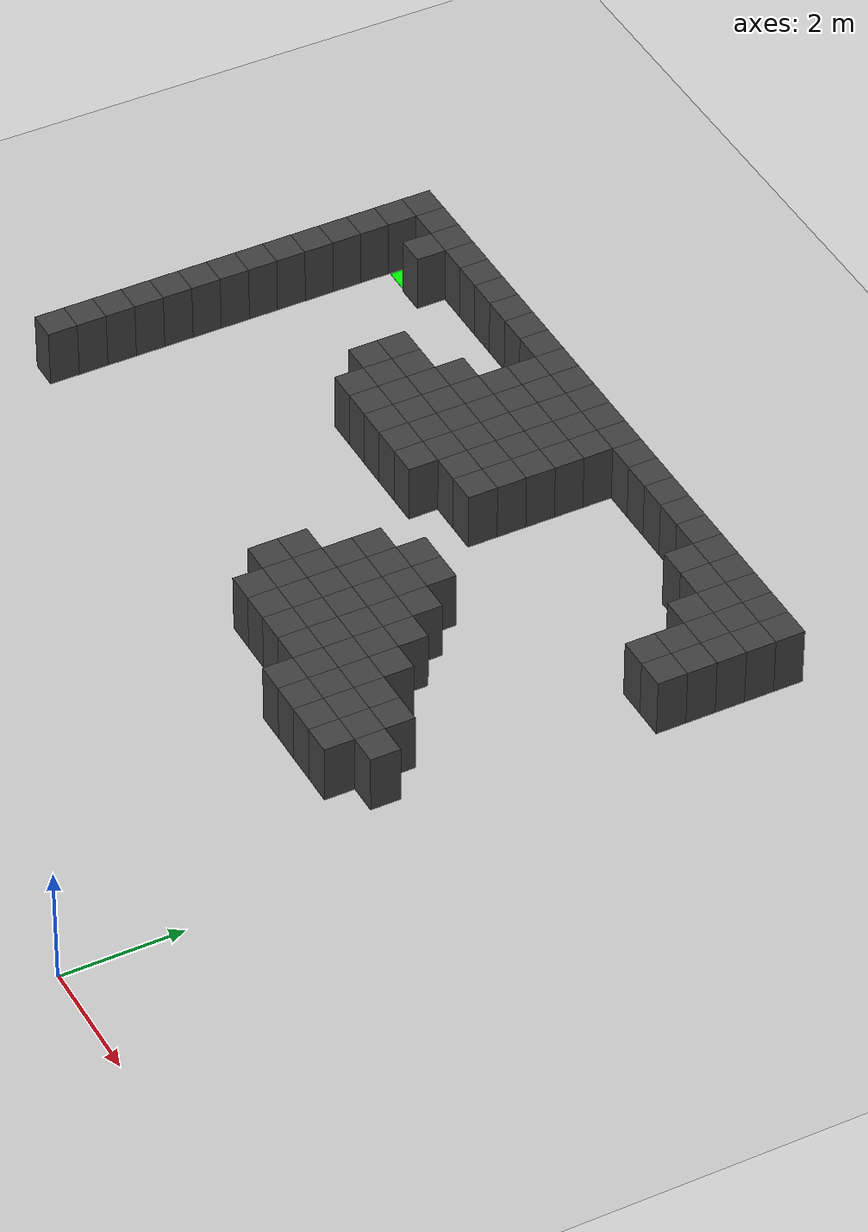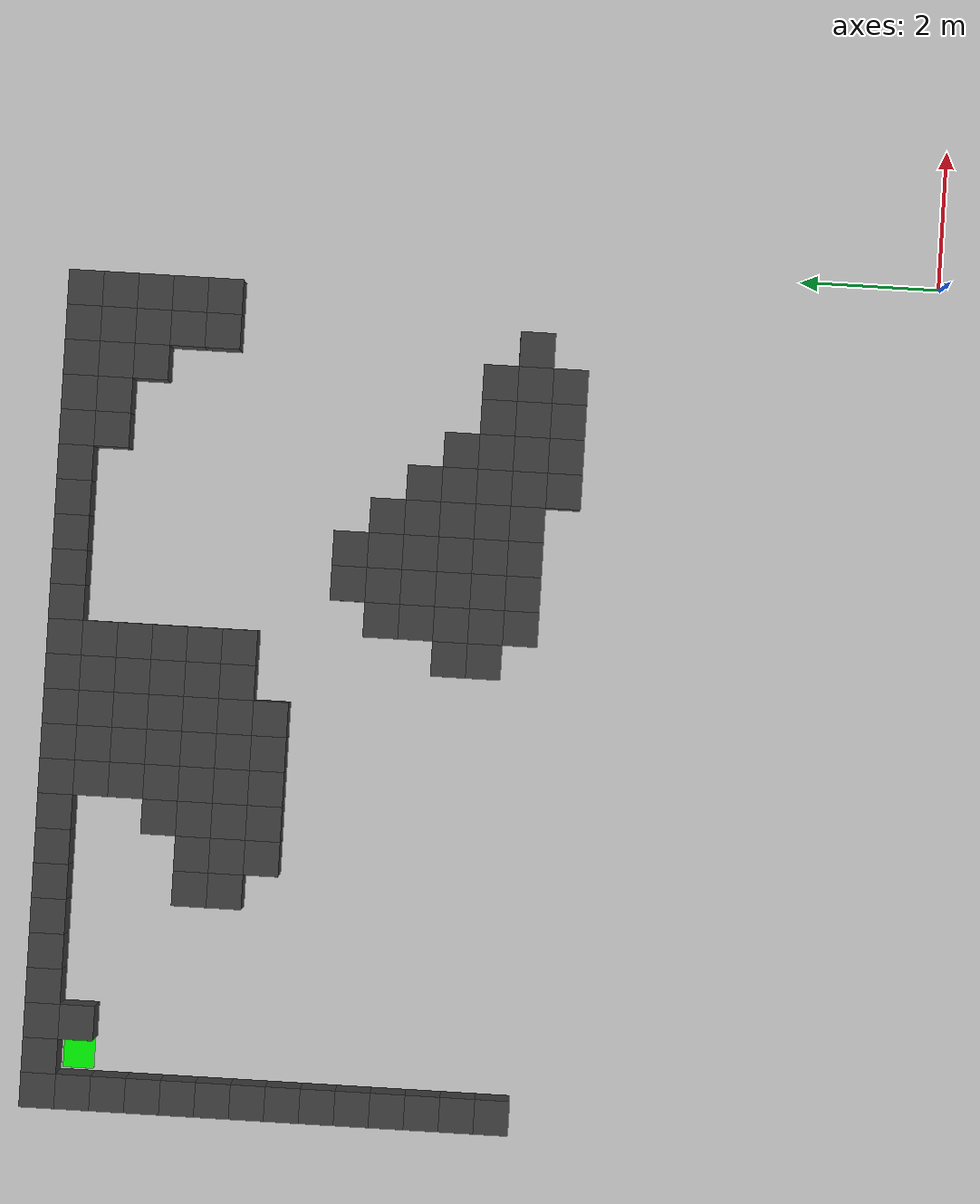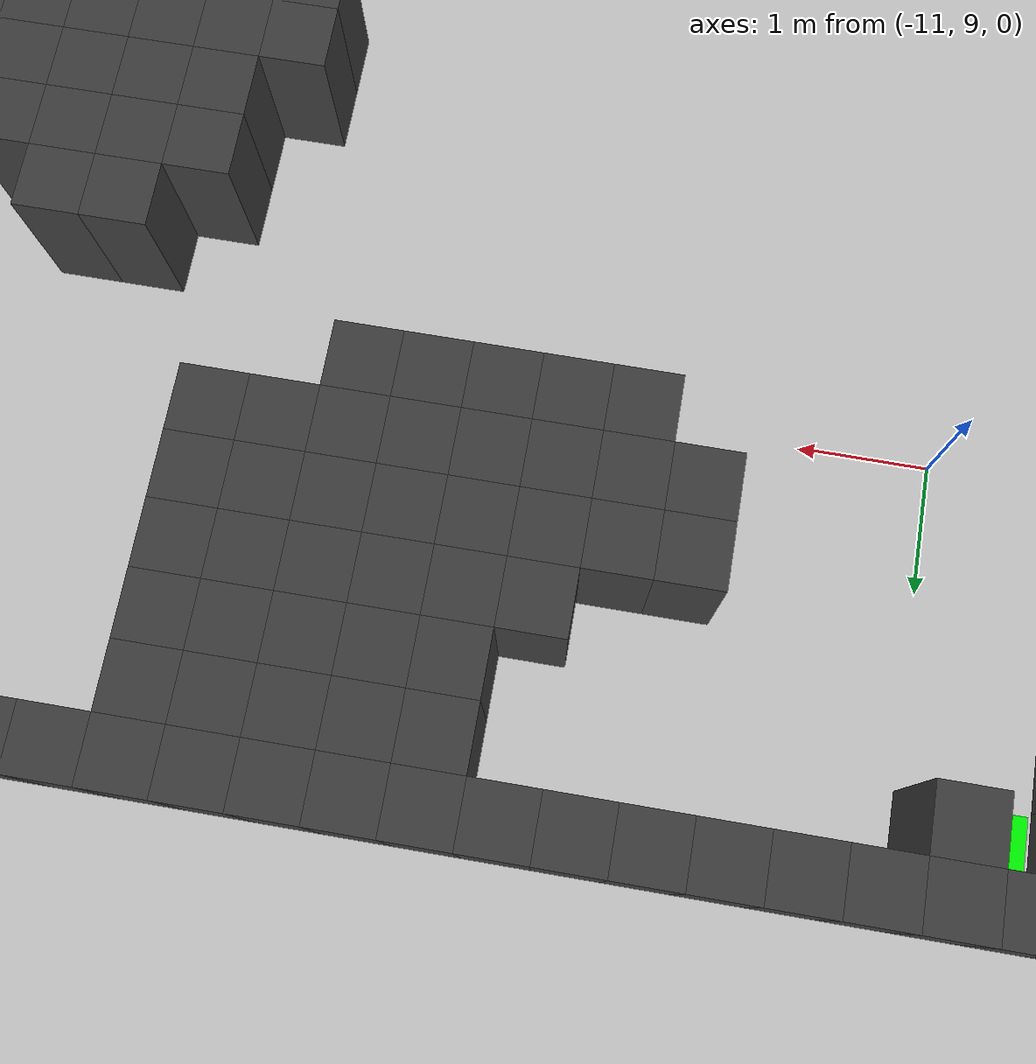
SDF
<sdf version="1.7">
 <world name="map_9713">
  <model name="ground_plane">
   <static>true</static>
   <link name="link">
    <collision name="collision">
     <geometry><plane><normal>0 0 1</normal><size>200 200</size></plane></geometry>
    </collision>
    <visual name="visual">
     <geometry><plane><normal>0 0 1</normal><size>200 200</size></plane></geometry>
     <material><ambient>0.8 0.8 0.8 1</ambient><diffuse>0.8 0.8 0.8 1</diffuse></material>
    </visual>
   </link>
  </model>
  <model name="maze_environment">
   <static>true</static>
   <link name="wall_0">
    <pose>-12.250 12.250 0.500 0 0 0</pose>
    <collision name="col"><geometry><box><size>0.5 0.5 1.0</size></box></geometry></collision>
    <visual name="vis">
     <geometry><box><size>0.5 0.5 1.0</size></box></geometry>
     <material><ambient>0.15 0.15 0.15 1</ambient><diffuse>0.25 0.25 0.25 1</diffuse></material>
    </visual>
   </link>
   <link name="wall_1">
    <pose>-11.750 12.250 0.500 0 0 0</pose>
    <collision name="col"><geometry><box><size>0.5 0.5 1.0</size></box></geometry></collision>
    <visual name="vis">
     <geometry><box><size>0.5 0.5 1.0</size></box></geometry>
     <material><ambient>0.15 0.15 0.15 1</ambient><diffuse>0.25 0.25 0.25 1</diffuse></material>
    </visual>
   </link>
   <link name="wall_2">
    <pose>-11.250 12.250 0.500 0 0 0</pose>
    <collision name="col"><geometry><box><size>0.5 0.5 1.0</size></box></geometry></collision>
    <visual name="vis">
     <geometry><box><size>0.5 0.5 1.0</size></box></geometry>
     <material><ambient>0.15 0.15 0.15 1</ambient><diffuse>0.25 0.25 0.25 1</diffuse></material>
    </visual>
   </link>
   <link name="wall_3">
    <pose>-10.750 12.250 0.500 0 0 0</pose>
    <collision name="col"><geometry><box><size>0.5 0.5 1.0</size></box></geometry></collision>
    <visual name="vis">
     <geometry><box><size>0.5 0.5 1.0</size></box></geometry>
     <material><ambient>0.15 0.15 0.15 1</ambient><diffuse>0.25 0.25 0.25 1</diffuse></material>
    </visual>
   </link>
   <link name="wall_4">
    <pose>-10.250 12.250 0.500 0 0 0</pose>
    <collision name="col"><geometry><box><size>0.5 0.5 1.0</size></box></geometry></collision>
    <visual name="vis">
     <geometry><box><size>0.5 0.5 1.0</size></box></geometry>
     <material><ambient>0.15 0.15 0.15 1</ambient><diffuse>0.25 0.25 0.25 1</diffuse></material>
    </visual>
   </link>
   <link name="wall_5">
    <pose>-9.750 12.250 0.500 0 0 0</pose>
    <collision name="col"><geometry><box><size>0.5 0.5 1.0</size></box></geometry></collision>
    <visual name="vis">
     <geometry><box><size>0.5 0.5 1.0</size></box></geometry>
     <material><ambient>0.15 0.15 0.15 1</ambient><diffuse>0.25 0.25 0.25 1</diffuse></material>
    </visual>
   </link>
   <link name="wall_6">
    <pose>-9.250 12.250 0.500 0 0 0</pose>
    <collision name="col"><geometry><box><size>0.5 0.5 1.0</size></box></geometry></collision>
    <visual name="vis">
     <geometry><box><size>0.5 0.5 1.0</size></box></geometry>
     <material><ambient>0.15 0.15 0.15 1</ambient><diffuse>0.25 0.25 0.25 1</diffuse></material>
    </visual>
   </link>
   <link name="wall_7">
    <pose>-8.750 12.250 0.500 0 0 0</pose>
    <collision name="col"><geometry><box><size>0.5 0.5 1.0</size></box></geometry></collision>
    <visual name="vis">
     <geometry><box><size>0.5 0.5 1.0</size></box></geometry>
     <material><ambient>0.15 0.15 0.15 1</ambient><diffuse>0.25 0.25 0.25 1</diffuse></material>
    </visual>
   </link>
   <link name="wall_8">
    <pose>-8.250 12.250 0.500 0 0 0</pose>
    <collision name="col"><geometry><box><size>0.5 0.5 1.0</size></box></geometry></collision>
    <visual name="vis">
     <geometry><box><size>0.5 0.5 1.0</size></box></geometry>
     <material><ambient>0.15 0.15 0.15 1</ambient><diffuse>0.25 0.25 0.25 1</diffuse></material>
    </visual>
   </link>
   <link name="wall_9">
    <pose>-7.750 12.250 0.500 0 0 0</pose>
    <collision name="col"><geometry><box><size>0.5 0.5 1.0</size></box></geometry></collision>
    <visual name="vis">
     <geometry><box><size>0.5 0.5 1.0</size></box></geometry>
     <material><ambient>0.15 0.15 0.15 1</ambient><diffuse>0.25 0.25 0.25 1</diffuse></material>
    </visual>
   </link>
   <link name="wall_10">
    <pose>-7.250 12.250 0.500 0 0 0</pose>
    <collision name="col"><geometry><box><size>0.5 0.5 1.0</size></box></geometry></collision>
    <visual name="vis">
     <geometry><box><size>0.5 0.5 1.0</size></box></geometry>
     <material><ambient>0.15 0.15 0.15 1</ambient><diffuse>0.25 0.25 0.25 1</diffuse></material>
    </visual>
   </link>
   <link name="wall_11">
    <pose>-6.750 12.250 0.500 0 0 0</pose>
    <collision name="col"><geometry><box><size>0.5 0.5 1.0</size></box></geometry></collision>
    <visual name="vis">
     <geometry><box><size>0.5 0.5 1.0</size></box></geometry>
     <material><ambient>0.15 0.15 0.15 1</ambient><diffuse>0.25 0.25 0.25 1</diffuse></material>
    </visual>
   </link>
   <link name="wall_12">
    <pose>-6.250 12.250 0.500 0 0 0</pose>
    <collision name="col"><geometry><box><size>0.5 0.5 1.0</size></box></geometry></collision>
    <visual name="vis">
     <geometry><box><size>0.5 0.5 1.0</size></box></geometry>
     <material><ambient>0.15 0.15 0.15 1</ambient><diffuse>0.25 0.25 0.25 1</diffuse></material>
    </visual>
   </link>
   <link name="wall_13">
    <pose>-5.750 12.250 0.500 0 0 0</pose>
    <collision name="col"><geometry><box><size>0.5 0.5 1.0</size></box></geometry></collision>
    <visual name="vis">
     <geometry><box><size>0.5 0.5 1.0</size></box></geometry>
     <material><ambient>0.15 0.15 0.15 1</ambient><diffuse>0.25 0.25 0.25 1</diffuse></material>
    </visual>
   </link>
   <link name="wall_14">
    <pose>-5.250 12.250 0.500 0 0 0</pose>
    <collision name="col"><geometry><box><size>0.5 0.5 1.0</size></box></geometry></collision>
    <visual name="vis">
     <geometry><box><size>0.5 0.5 1.0</size></box></geometry>
     <material><ambient>0.15 0.15 0.15 1</ambient><diffuse>0.25 0.25 0.25 1</diffuse></material>
    </visual>
   </link>
   <link name="wall_15">
    <pose>-4.750 12.250 0.500 0 0 0</pose>
    <collision name="col"><geometry><box><size>0.5 0.5 1.0</size></box></geometry></collision>
    <visual name="vis">
     <geometry><box><size>0.5 0.5 1.0</size></box></geometry>
     <material><ambient>0.15 0.15 0.15 1</ambient><diffuse>0.25 0.25 0.25 1</diffuse></material>
    </visual>
   </link>
   <link name="wall_16">
    <pose>-4.250 12.250 0.500 0 0 0</pose>
    <collision name="col"><geometry><box><size>0.5 0.5 1.0</size></box></geometry></collision>
    <visual name="vis">
     <geometry><box><size>0.5 0.5 1.0</size></box></geometry>
     <material><ambient>0.15 0.15 0.15 1</ambient><diffuse>0.25 0.25 0.25 1</diffuse></material>
    </visual>
   </link>
   <link name="wall_17">
    <pose>-3.750 12.250 0.500 0 0 0</pose>
    <collision name="col"><geometry><box><size>0.5 0.5 1.0</size></box></geometry></collision>
    <visual name="vis">
     <geometry><box><size>0.5 0.5 1.0</size></box></geometry>
     <material><ambient>0.15 0.15 0.15 1</ambient><diffuse>0.25 0.25 0.25 1</diffuse></material>
    </visual>
   </link>
   <link name="wall_18">
    <pose>-3.250 12.250 0.500 0 0 0</pose>
    <collision name="col"><geometry><box><size>0.5 0.5 1.0</size></box></geometry></collision>
    <visual name="vis">
     <geometry><box><size>0.5 0.5 1.0</size></box></geometry>
     <material><ambient>0.15 0.15 0.15 1</ambient><diffuse>0.25 0.25 0.25 1</diffuse></material>
    </visual>
   </link>
   <link name="wall_19">
    <pose>-2.750 12.250 0.500 0 0 0</pose>
    <collision name="col"><geometry><box><size>0.5 0.5 1.0</size></box></geometry></collision>
    <visual name="vis">
     <geometry><box><size>0.5 0.5 1.0</size></box></geometry>
     <material><ambient>0.15 0.15 0.15 1</ambient><diffuse>0.25 0.25 0.25 1</diffuse></material>
    </visual>
   </link>
   <link name="wall_20">
    <pose>-2.250 12.250 0.500 0 0 0</pose>
    <collision name="col"><geometry><box><size>0.5 0.5 1.0</size></box></geometry></collision>
    <visual name="vis">
     <geometry><box><size>0.5 0.5 1.0</size></box></geometry>
     <material><ambient>0.15 0.15 0.15 1</ambient><diffuse>0.25 0.25 0.25 1</diffuse></material>
    </visual>
   </link>
   <link name="wall_21">
    <pose>-1.750 12.250 0.500 0 0 0</pose>
    <collision name="col"><geometry><box><size>0.5 0.5 1.0</size></box></geometry></collision>
    <visual name="vis">
     <geometry><box><size>0.5 0.5 1.0</size></box></geometry>
     <material><ambient>0.15 0.15 0.15 1</ambient><diffuse>0.25 0.25 0.25 1</diffuse></material>
    </visual>
   </link>
   <link name="wall_22">
    <pose>-1.250 12.250 0.500 0 0 0</pose>
    <collision name="col"><geometry><box><size>0.5 0.5 1.0</size></box></geometry></collision>
    <visual name="vis">
     <geometry><box><size>0.5 0.5 1.0</size></box></geometry>
     <material><ambient>0.15 0.15 0.15 1</ambient><diffuse>0.25 0.25 0.25 1</diffuse></material>
    </visual>
   </link>
   <link name="wall_23">
    <pose>-0.750 12.250 0.500 0 0 0</pose>
    <collision name="col"><geometry><box><size>0.5 0.5 1.0</size></box></geometry></collision>
    <visual name="vis">
     <geometry><box><size>0.5 0.5 1.0</size></box></geometry>
     <material><ambient>0.15 0.15 0.15 1</ambient><diffuse>0.25 0.25 0.25 1</diffuse></material>
    </visual>
   </link>
   <link name="wall_50">
    <pose>-12.250 11.750 0.500 0 0 0</pose>
    <collision name="col"><geometry><box><size>0.5 0.5 1.0</size></box></geometry></collision>
    <visual name="vis">
     <geometry><box><size>0.5 0.5 1.0</size></box></geometry>
     <material><ambient>0.15 0.15 0.15 1</ambient><diffuse>0.25 0.25 0.25 1</diffuse></material>
    </visual>
   </link>
   <link name="wall_51">
    <pose>-11.250 11.750 0.500 0 0 0</pose>
    <collision name="col"><geometry><box><size>0.5 0.5 1.0</size></box></geometry></collision>
    <visual name="vis">
     <geometry><box><size>0.5 0.5 1.0</size></box></geometry>
     <material><ambient>0.15 0.15 0.15 1</ambient><diffuse>0.25 0.25 0.25 1</diffuse></material>
    </visual>
   </link>
   <link name="wall_52">
    <pose>-7.750 11.750 0.500 0 0 0</pose>
    <collision name="col"><geometry><box><size>0.5 0.5 1.0</size></box></geometry></collision>
    <visual name="vis">
     <geometry><box><size>0.5 0.5 1.0</size></box></geometry>
     <material><ambient>0.15 0.15 0.15 1</ambient><diffuse>0.25 0.25 0.25 1</diffuse></material>
    </visual>
   </link>
   <link name="wall_53">
    <pose>-7.250 11.750 0.500 0 0 0</pose>
    <collision name="col"><geometry><box><size>0.5 0.5 1.0</size></box></geometry></collision>
    <visual name="vis">
     <geometry><box><size>0.5 0.5 1.0</size></box></geometry>
     <material><ambient>0.15 0.15 0.15 1</ambient><diffuse>0.25 0.25 0.25 1</diffuse></material>
    </visual>
   </link>
   <link name="wall_54">
    <pose>-6.750 11.750 0.500 0 0 0</pose>
    <collision name="col"><geometry><box><size>0.5 0.5 1.0</size></box></geometry></collision>
    <visual name="vis">
     <geometry><box><size>0.5 0.5 1.0</size></box></geometry>
     <material><ambient>0.15 0.15 0.15 1</ambient><diffuse>0.25 0.25 0.25 1</diffuse></material>
    </visual>
   </link>
   <link name="wall_55">
    <pose>-6.250 11.750 0.500 0 0 0</pose>
    <collision name="col"><geometry><box><size>0.5 0.5 1.0</size></box></geometry></collision>
    <visual name="vis">
     <geometry><box><size>0.5 0.5 1.0</size></box></geometry>
     <material><ambient>0.15 0.15 0.15 1</ambient><diffuse>0.25 0.25 0.25 1</diffuse></material>
    </visual>
   </link>
   <link name="wall_56">
    <pose>-5.750 11.750 0.500 0 0 0</pose>
    <collision name="col"><geometry><box><size>0.5 0.5 1.0</size></box></geometry></collision>
    <visual name="vis">
     <geometry><box><size>0.5 0.5 1.0</size></box></geometry>
     <material><ambient>0.15 0.15 0.15 1</ambient><diffuse>0.25 0.25 0.25 1</diffuse></material>
    </visual>
   </link>
   <link name="wall_57">
    <pose>-2.750 11.750 0.500 0 0 0</pose>
    <collision name="col"><geometry><box><size>0.5 0.5 1.0</size></box></geometry></collision>
    <visual name="vis">
     <geometry><box><size>0.5 0.5 1.0</size></box></geometry>
     <material><ambient>0.15 0.15 0.15 1</ambient><diffuse>0.25 0.25 0.25 1</diffuse></material>
    </visual>
   </link>
   <link name="wall_58">
    <pose>-2.250 11.750 0.500 0 0 0</pose>
    <collision name="col"><geometry><box><size>0.5 0.5 1.0</size></box></geometry></collision>
    <visual name="vis">
     <geometry><box><size>0.5 0.5 1.0</size></box></geometry>
     <material><ambient>0.15 0.15 0.15 1</ambient><diffuse>0.25 0.25 0.25 1</diffuse></material>
    </visual>
   </link>
   <link name="wall_59">
    <pose>-1.750 11.750 0.500 0 0 0</pose>
    <collision name="col"><geometry><box><size>0.5 0.5 1.0</size></box></geometry></collision>
    <visual name="vis">
     <geometry><box><size>0.5 0.5 1.0</size></box></geometry>
     <material><ambient>0.15 0.15 0.15 1</ambient><diffuse>0.25 0.25 0.25 1</diffuse></material>
    </visual>
   </link>
   <link name="wall_60">
    <pose>-1.250 11.750 0.500 0 0 0</pose>
    <collision name="col"><geometry><box><size>0.5 0.5 1.0</size></box></geometry></collision>
    <visual name="vis">
     <geometry><box><size>0.5 0.5 1.0</size></box></geometry>
     <material><ambient>0.15 0.15 0.15 1</ambient><diffuse>0.25 0.25 0.25 1</diffuse></material>
    </visual>
   </link>
   <link name="wall_61">
    <pose>-0.750 11.750 0.500 0 0 0</pose>
    <collision name="col"><geometry><box><size>0.5 0.5 1.0</size></box></geometry></collision>
    <visual name="vis">
     <geometry><box><size>0.5 0.5 1.0</size></box></geometry>
     <material><ambient>0.15 0.15 0.15 1</ambient><diffuse>0.25 0.25 0.25 1</diffuse></material>
    </visual>
   </link>
   <link name="wall_82">
    <pose>-12.250 11.250 0.500 0 0 0</pose>
    <collision name="col"><geometry><box><size>0.5 0.5 1.0</size></box></geometry></collision>
    <visual name="vis">
     <geometry><box><size>0.5 0.5 1.0</size></box></geometry>
     <material><ambient>0.15 0.15 0.15 1</ambient><diffuse>0.25 0.25 0.25 1</diffuse></material>
    </visual>
   </link>
   <link name="wall_83">
    <pose>-7.750 11.250 0.500 0 0 0</pose>
    <collision name="col"><geometry><box><size>0.5 0.5 1.0</size></box></geometry></collision>
    <visual name="vis">
     <geometry><box><size>0.5 0.5 1.0</size></box></geometry>
     <material><ambient>0.15 0.15 0.15 1</ambient><diffuse>0.25 0.25 0.25 1</diffuse></material>
    </visual>
   </link>
   <link name="wall_84">
    <pose>-7.250 11.250 0.500 0 0 0</pose>
    <collision name="col"><geometry><box><size>0.5 0.5 1.0</size></box></geometry></collision>
    <visual name="vis">
     <geometry><box><size>0.5 0.5 1.0</size></box></geometry>
     <material><ambient>0.15 0.15 0.15 1</ambient><diffuse>0.25 0.25 0.25 1</diffuse></material>
    </visual>
   </link>
   <link name="wall_85">
    <pose>-6.750 11.250 0.500 0 0 0</pose>
    <collision name="col"><geometry><box><size>0.5 0.5 1.0</size></box></geometry></collision>
    <visual name="vis">
     <geometry><box><size>0.5 0.5 1.0</size></box></geometry>
     <material><ambient>0.15 0.15 0.15 1</ambient><diffuse>0.25 0.25 0.25 1</diffuse></material>
    </visual>
   </link>
   <link name="wall_86">
    <pose>-6.250 11.250 0.500 0 0 0</pose>
    <collision name="col"><geometry><box><size>0.5 0.5 1.0</size></box></geometry></collision>
    <visual name="vis">
     <geometry><box><size>0.5 0.5 1.0</size></box></geometry>
     <material><ambient>0.15 0.15 0.15 1</ambient><diffuse>0.25 0.25 0.25 1</diffuse></material>
    </visual>
   </link>
   <link name="wall_87">
    <pose>-5.750 11.250 0.500 0 0 0</pose>
    <collision name="col"><geometry><box><size>0.5 0.5 1.0</size></box></geometry></collision>
    <visual name="vis">
     <geometry><box><size>0.5 0.5 1.0</size></box></geometry>
     <material><ambient>0.15 0.15 0.15 1</ambient><diffuse>0.25 0.25 0.25 1</diffuse></material>
    </visual>
   </link>
   <link name="wall_88">
    <pose>-1.750 11.250 0.500 0 0 0</pose>
    <collision name="col"><geometry><box><size>0.5 0.5 1.0</size></box></geometry></collision>
    <visual name="vis">
     <geometry><box><size>0.5 0.5 1.0</size></box></geometry>
     <material><ambient>0.15 0.15 0.15 1</ambient><diffuse>0.25 0.25 0.25 1</diffuse></material>
    </visual>
   </link>
   <link name="wall_89">
    <pose>-1.250 11.250 0.500 0 0 0</pose>
    <collision name="col"><geometry><box><size>0.5 0.5 1.0</size></box></geometry></collision>
    <visual name="vis">
     <geometry><box><size>0.5 0.5 1.0</size></box></geometry>
     <material><ambient>0.15 0.15 0.15 1</ambient><diffuse>0.25 0.25 0.25 1</diffuse></material>
    </visual>
   </link>
   <link name="wall_90">
    <pose>-0.750 11.250 0.500 0 0 0</pose>
    <collision name="col"><geometry><box><size>0.5 0.5 1.0</size></box></geometry></collision>
    <visual name="vis">
     <geometry><box><size>0.5 0.5 1.0</size></box></geometry>
     <material><ambient>0.15 0.15 0.15 1</ambient><diffuse>0.25 0.25 0.25 1</diffuse></material>
    </visual>
   </link>
   <link name="wall_105">
    <pose>-12.250 10.750 0.500 0 0 0</pose>
    <collision name="col"><geometry><box><size>0.5 0.5 1.0</size></box></geometry></collision>
    <visual name="vis">
     <geometry><box><size>0.5 0.5 1.0</size></box></geometry>
     <material><ambient>0.15 0.15 0.15 1</ambient><diffuse>0.25 0.25 0.25 1</diffuse></material>
    </visual>
   </link>
   <link name="wall_106">
    <pose>-8.250 10.750 0.500 0 0 0</pose>
    <collision name="col"><geometry><box><size>0.5 0.5 1.0</size></box></geometry></collision>
    <visual name="vis">
     <geometry><box><size>0.5 0.5 1.0</size></box></geometry>
     <material><ambient>0.15 0.15 0.15 1</ambient><diffuse>0.25 0.25 0.25 1</diffuse></material>
    </visual>
   </link>
   <link name="wall_107">
    <pose>-7.750 10.750 0.500 0 0 0</pose>
    <collision name="col"><geometry><box><size>0.5 0.5 1.0</size></box></geometry></collision>
    <visual name="vis">
     <geometry><box><size>0.5 0.5 1.0</size></box></geometry>
     <material><ambient>0.15 0.15 0.15 1</ambient><diffuse>0.25 0.25 0.25 1</diffuse></material>
    </visual>
   </link>
   <link name="wall_108">
    <pose>-7.250 10.750 0.500 0 0 0</pose>
    <collision name="col"><geometry><box><size>0.5 0.5 1.0</size></box></geometry></collision>
    <visual name="vis">
     <geometry><box><size>0.5 0.5 1.0</size></box></geometry>
     <material><ambient>0.15 0.15 0.15 1</ambient><diffuse>0.25 0.25 0.25 1</diffuse></material>
    </visual>
   </link>
   <link name="wall_109">
    <pose>-6.750 10.750 0.500 0 0 0</pose>
    <collision name="col"><geometry><box><size>0.5 0.5 1.0</size></box></geometry></collision>
    <visual name="vis">
     <geometry><box><size>0.5 0.5 1.0</size></box></geometry>
     <material><ambient>0.15 0.15 0.15 1</ambient><diffuse>0.25 0.25 0.25 1</diffuse></material>
    </visual>
   </link>
   <link name="wall_110">
    <pose>-6.250 10.750 0.500 0 0 0</pose>
    <collision name="col"><geometry><box><size>0.5 0.5 1.0</size></box></geometry></collision>
    <visual name="vis">
     <geometry><box><size>0.5 0.5 1.0</size></box></geometry>
     <material><ambient>0.15 0.15 0.15 1</ambient><diffuse>0.25 0.25 0.25 1</diffuse></material>
    </visual>
   </link>
   <link name="wall_111">
    <pose>-5.750 10.750 0.500 0 0 0</pose>
    <collision name="col"><geometry><box><size>0.5 0.5 1.0</size></box></geometry></collision>
    <visual name="vis">
     <geometry><box><size>0.5 0.5 1.0</size></box></geometry>
     <material><ambient>0.15 0.15 0.15 1</ambient><diffuse>0.25 0.25 0.25 1</diffuse></material>
    </visual>
   </link>
   <link name="wall_112">
    <pose>-1.250 10.750 0.500 0 0 0</pose>
    <collision name="col"><geometry><box><size>0.5 0.5 1.0</size></box></geometry></collision>
    <visual name="vis">
     <geometry><box><size>0.5 0.5 1.0</size></box></geometry>
     <material><ambient>0.15 0.15 0.15 1</ambient><diffuse>0.25 0.25 0.25 1</diffuse></material>
    </visual>
   </link>
   <link name="wall_113">
    <pose>-0.750 10.750 0.500 0 0 0</pose>
    <collision name="col"><geometry><box><size>0.5 0.5 1.0</size></box></geometry></collision>
    <visual name="vis">
     <geometry><box><size>0.5 0.5 1.0</size></box></geometry>
     <material><ambient>0.15 0.15 0.15 1</ambient><diffuse>0.25 0.25 0.25 1</diffuse></material>
    </visual>
   </link>
   <link name="wall_122">
    <pose>-12.250 10.250 0.500 0 0 0</pose>
    <collision name="col"><geometry><box><size>0.5 0.5 1.0</size></box></geometry></collision>
    <visual name="vis">
     <geometry><box><size>0.5 0.5 1.0</size></box></geometry>
     <material><ambient>0.15 0.15 0.15 1</ambient><diffuse>0.25 0.25 0.25 1</diffuse></material>
    </visual>
   </link>
   <link name="wall_123">
    <pose>-9.250 10.250 0.500 0 0 0</pose>
    <collision name="col"><geometry><box><size>0.5 0.5 1.0</size></box></geometry></collision>
    <visual name="vis">
     <geometry><box><size>0.5 0.5 1.0</size></box></geometry>
     <material><ambient>0.15 0.15 0.15 1</ambient><diffuse>0.25 0.25 0.25 1</diffuse></material>
    </visual>
   </link>
   <link name="wall_124">
    <pose>-8.750 10.250 0.500 0 0 0</pose>
    <collision name="col"><geometry><box><size>0.5 0.5 1.0</size></box></geometry></collision>
    <visual name="vis">
     <geometry><box><size>0.5 0.5 1.0</size></box></geometry>
     <material><ambient>0.15 0.15 0.15 1</ambient><diffuse>0.25 0.25 0.25 1</diffuse></material>
    </visual>
   </link>
   <link name="wall_125">
    <pose>-8.250 10.250 0.500 0 0 0</pose>
    <collision name="col"><geometry><box><size>0.5 0.5 1.0</size></box></geometry></collision>
    <visual name="vis">
     <geometry><box><size>0.5 0.5 1.0</size></box></geometry>
     <material><ambient>0.15 0.15 0.15 1</ambient><diffuse>0.25 0.25 0.25 1</diffuse></material>
    </visual>
   </link>
   <link name="wall_126">
    <pose>-7.750 10.250 0.500 0 0 0</pose>
    <collision name="col"><geometry><box><size>0.5 0.5 1.0</size></box></geometry></collision>
    <visual name="vis">
     <geometry><box><size>0.5 0.5 1.0</size></box></geometry>
     <material><ambient>0.15 0.15 0.15 1</ambient><diffuse>0.25 0.25 0.25 1</diffuse></material>
    </visual>
   </link>
   <link name="wall_127">
    <pose>-7.250 10.250 0.500 0 0 0</pose>
    <collision name="col"><geometry><box><size>0.5 0.5 1.0</size></box></geometry></collision>
    <visual name="vis">
     <geometry><box><size>0.5 0.5 1.0</size></box></geometry>
     <material><ambient>0.15 0.15 0.15 1</ambient><diffuse>0.25 0.25 0.25 1</diffuse></material>
    </visual>
   </link>
   <link name="wall_128">
    <pose>-6.750 10.250 0.500 0 0 0</pose>
    <collision name="col"><geometry><box><size>0.5 0.5 1.0</size></box></geometry></collision>
    <visual name="vis">
     <geometry><box><size>0.5 0.5 1.0</size></box></geometry>
     <material><ambient>0.15 0.15 0.15 1</ambient><diffuse>0.25 0.25 0.25 1</diffuse></material>
    </visual>
   </link>
   <link name="wall_129">
    <pose>-6.250 10.250 0.500 0 0 0</pose>
    <collision name="col"><geometry><box><size>0.5 0.5 1.0</size></box></geometry></collision>
    <visual name="vis">
     <geometry><box><size>0.5 0.5 1.0</size></box></geometry>
     <material><ambient>0.15 0.15 0.15 1</ambient><diffuse>0.25 0.25 0.25 1</diffuse></material>
    </visual>
   </link>
   <link name="wall_130">
    <pose>-5.750 10.250 0.500 0 0 0</pose>
    <collision name="col"><geometry><box><size>0.5 0.5 1.0</size></box></geometry></collision>
    <visual name="vis">
     <geometry><box><size>0.5 0.5 1.0</size></box></geometry>
     <material><ambient>0.15 0.15 0.15 1</ambient><diffuse>0.25 0.25 0.25 1</diffuse></material>
    </visual>
   </link>
   <link name="wall_131">
    <pose>-1.250 10.250 0.500 0 0 0</pose>
    <collision name="col"><geometry><box><size>0.5 0.5 1.0</size></box></geometry></collision>
    <visual name="vis">
     <geometry><box><size>0.5 0.5 1.0</size></box></geometry>
     <material><ambient>0.15 0.15 0.15 1</ambient><diffuse>0.25 0.25 0.25 1</diffuse></material>
    </visual>
   </link>
   <link name="wall_132">
    <pose>-0.750 10.250 0.500 0 0 0</pose>
    <collision name="col"><geometry><box><size>0.5 0.5 1.0</size></box></geometry></collision>
    <visual name="vis">
     <geometry><box><size>0.5 0.5 1.0</size></box></geometry>
     <material><ambient>0.15 0.15 0.15 1</ambient><diffuse>0.25 0.25 0.25 1</diffuse></material>
    </visual>
   </link>
   <link name="wall_139">
    <pose>-12.250 9.750 0.500 0 0 0</pose>
    <collision name="col"><geometry><box><size>0.5 0.5 1.0</size></box></geometry></collision>
    <visual name="vis">
     <geometry><box><size>0.5 0.5 1.0</size></box></geometry>
     <material><ambient>0.15 0.15 0.15 1</ambient><diffuse>0.25 0.25 0.25 1</diffuse></material>
    </visual>
   </link>
   <link name="wall_140">
    <pose>-9.250 9.750 0.500 0 0 0</pose>
    <collision name="col"><geometry><box><size>0.5 0.5 1.0</size></box></geometry></collision>
    <visual name="vis">
     <geometry><box><size>0.5 0.5 1.0</size></box></geometry>
     <material><ambient>0.15 0.15 0.15 1</ambient><diffuse>0.25 0.25 0.25 1</diffuse></material>
    </visual>
   </link>
   <link name="wall_141">
    <pose>-8.750 9.750 0.500 0 0 0</pose>
    <collision name="col"><geometry><box><size>0.5 0.5 1.0</size></box></geometry></collision>
    <visual name="vis">
     <geometry><box><size>0.5 0.5 1.0</size></box></geometry>
     <material><ambient>0.15 0.15 0.15 1</ambient><diffuse>0.25 0.25 0.25 1</diffuse></material>
    </visual>
   </link>
   <link name="wall_142">
    <pose>-8.250 9.750 0.500 0 0 0</pose>
    <collision name="col"><geometry><box><size>0.5 0.5 1.0</size></box></geometry></collision>
    <visual name="vis">
     <geometry><box><size>0.5 0.5 1.0</size></box></geometry>
     <material><ambient>0.15 0.15 0.15 1</ambient><diffuse>0.25 0.25 0.25 1</diffuse></material>
    </visual>
   </link>
   <link name="wall_143">
    <pose>-7.750 9.750 0.500 0 0 0</pose>
    <collision name="col"><geometry><box><size>0.5 0.5 1.0</size></box></geometry></collision>
    <visual name="vis">
     <geometry><box><size>0.5 0.5 1.0</size></box></geometry>
     <material><ambient>0.15 0.15 0.15 1</ambient><diffuse>0.25 0.25 0.25 1</diffuse></material>
    </visual>
   </link>
   <link name="wall_144">
    <pose>-7.250 9.750 0.500 0 0 0</pose>
    <collision name="col"><geometry><box><size>0.5 0.5 1.0</size></box></geometry></collision>
    <visual name="vis">
     <geometry><box><size>0.5 0.5 1.0</size></box></geometry>
     <material><ambient>0.15 0.15 0.15 1</ambient><diffuse>0.25 0.25 0.25 1</diffuse></material>
    </visual>
   </link>
   <link name="wall_145">
    <pose>-6.750 9.750 0.500 0 0 0</pose>
    <collision name="col"><geometry><box><size>0.5 0.5 1.0</size></box></geometry></collision>
    <visual name="vis">
     <geometry><box><size>0.5 0.5 1.0</size></box></geometry>
     <material><ambient>0.15 0.15 0.15 1</ambient><diffuse>0.25 0.25 0.25 1</diffuse></material>
    </visual>
   </link>
   <link name="wall_146">
    <pose>-6.250 9.750 0.500 0 0 0</pose>
    <collision name="col"><geometry><box><size>0.5 0.5 1.0</size></box></geometry></collision>
    <visual name="vis">
     <geometry><box><size>0.5 0.5 1.0</size></box></geometry>
     <material><ambient>0.15 0.15 0.15 1</ambient><diffuse>0.25 0.25 0.25 1</diffuse></material>
    </visual>
   </link>
   <link name="wall_147">
    <pose>-5.750 9.750 0.500 0 0 0</pose>
    <collision name="col"><geometry><box><size>0.5 0.5 1.0</size></box></geometry></collision>
    <visual name="vis">
     <geometry><box><size>0.5 0.5 1.0</size></box></geometry>
     <material><ambient>0.15 0.15 0.15 1</ambient><diffuse>0.25 0.25 0.25 1</diffuse></material>
    </visual>
   </link>
   <link name="wall_153">
    <pose>-12.250 9.250 0.500 0 0 0</pose>
    <collision name="col"><geometry><box><size>0.5 0.5 1.0</size></box></geometry></collision>
    <visual name="vis">
     <geometry><box><size>0.5 0.5 1.0</size></box></geometry>
     <material><ambient>0.15 0.15 0.15 1</ambient><diffuse>0.25 0.25 0.25 1</diffuse></material>
    </visual>
   </link>
   <link name="wall_154">
    <pose>-8.750 9.250 0.500 0 0 0</pose>
    <collision name="col"><geometry><box><size>0.5 0.5 1.0</size></box></geometry></collision>
    <visual name="vis">
     <geometry><box><size>0.5 0.5 1.0</size></box></geometry>
     <material><ambient>0.15 0.15 0.15 1</ambient><diffuse>0.25 0.25 0.25 1</diffuse></material>
    </visual>
   </link>
   <link name="wall_155">
    <pose>-8.250 9.250 0.500 0 0 0</pose>
    <collision name="col"><geometry><box><size>0.5 0.5 1.0</size></box></geometry></collision>
    <visual name="vis">
     <geometry><box><size>0.5 0.5 1.0</size></box></geometry>
     <material><ambient>0.15 0.15 0.15 1</ambient><diffuse>0.25 0.25 0.25 1</diffuse></material>
    </visual>
   </link>
   <link name="wall_156">
    <pose>-7.750 9.250 0.500 0 0 0</pose>
    <collision name="col"><geometry><box><size>0.5 0.5 1.0</size></box></geometry></collision>
    <visual name="vis">
     <geometry><box><size>0.5 0.5 1.0</size></box></geometry>
     <material><ambient>0.15 0.15 0.15 1</ambient><diffuse>0.25 0.25 0.25 1</diffuse></material>
    </visual>
   </link>
   <link name="wall_157">
    <pose>-7.250 9.250 0.500 0 0 0</pose>
    <collision name="col"><geometry><box><size>0.5 0.5 1.0</size></box></geometry></collision>
    <visual name="vis">
     <geometry><box><size>0.5 0.5 1.0</size></box></geometry>
     <material><ambient>0.15 0.15 0.15 1</ambient><diffuse>0.25 0.25 0.25 1</diffuse></material>
    </visual>
   </link>
   <link name="wall_158">
    <pose>-6.750 9.250 0.500 0 0 0</pose>
    <collision name="col"><geometry><box><size>0.5 0.5 1.0</size></box></geometry></collision>
    <visual name="vis">
     <geometry><box><size>0.5 0.5 1.0</size></box></geometry>
     <material><ambient>0.15 0.15 0.15 1</ambient><diffuse>0.25 0.25 0.25 1</diffuse></material>
    </visual>
   </link>
   <link name="wall_163">
    <pose>-12.250 8.750 0.500 0 0 0</pose>
    <collision name="col"><geometry><box><size>0.5 0.5 1.0</size></box></geometry></collision>
    <visual name="vis">
     <geometry><box><size>0.5 0.5 1.0</size></box></geometry>
     <material><ambient>0.15 0.15 0.15 1</ambient><diffuse>0.25 0.25 0.25 1</diffuse></material>
    </visual>
   </link>
   <link name="wall_169">
    <pose>-12.250 8.250 0.500 0 0 0</pose>
    <collision name="col"><geometry><box><size>0.5 0.5 1.0</size></box></geometry></collision>
    <visual name="vis">
     <geometry><box><size>0.5 0.5 1.0</size></box></geometry>
     <material><ambient>0.15 0.15 0.15 1</ambient><diffuse>0.25 0.25 0.25 1</diffuse></material>
    </visual>
   </link>
   <link name="wall_170">
    <pose>-4.750 8.250 0.500 0 0 0</pose>
    <collision name="col"><geometry><box><size>0.5 0.5 1.0</size></box></geometry></collision>
    <visual name="vis">
     <geometry><box><size>0.5 0.5 1.0</size></box></geometry>
     <material><ambient>0.15 0.15 0.15 1</ambient><diffuse>0.25 0.25 0.25 1</diffuse></material>
    </visual>
   </link>
   <link name="wall_171">
    <pose>-4.250 8.250 0.500 0 0 0</pose>
    <collision name="col"><geometry><box><size>0.5 0.5 1.0</size></box></geometry></collision>
    <visual name="vis">
     <geometry><box><size>0.5 0.5 1.0</size></box></geometry>
     <material><ambient>0.15 0.15 0.15 1</ambient><diffuse>0.25 0.25 0.25 1</diffuse></material>
    </visual>
   </link>
   <link name="wall_178">
    <pose>-12.250 7.750 0.500 0 0 0</pose>
    <collision name="col"><geometry><box><size>0.5 0.5 1.0</size></box></geometry></collision>
    <visual name="vis">
     <geometry><box><size>0.5 0.5 1.0</size></box></geometry>
     <material><ambient>0.15 0.15 0.15 1</ambient><diffuse>0.25 0.25 0.25 1</diffuse></material>
    </visual>
   </link>
   <link name="wall_179">
    <pose>-5.250 7.750 0.500 0 0 0</pose>
    <collision name="col"><geometry><box><size>0.5 0.5 1.0</size></box></geometry></collision>
    <visual name="vis">
     <geometry><box><size>0.5 0.5 1.0</size></box></geometry>
     <material><ambient>0.15 0.15 0.15 1</ambient><diffuse>0.25 0.25 0.25 1</diffuse></material>
    </visual>
   </link>
   <link name="wall_180">
    <pose>-4.750 7.750 0.500 0 0 0</pose>
    <collision name="col"><geometry><box><size>0.5 0.5 1.0</size></box></geometry></collision>
    <visual name="vis">
     <geometry><box><size>0.5 0.5 1.0</size></box></geometry>
     <material><ambient>0.15 0.15 0.15 1</ambient><diffuse>0.25 0.25 0.25 1</diffuse></material>
    </visual>
   </link>
   <link name="wall_181">
    <pose>-4.250 7.750 0.500 0 0 0</pose>
    <collision name="col"><geometry><box><size>0.5 0.5 1.0</size></box></geometry></collision>
    <visual name="vis">
     <geometry><box><size>0.5 0.5 1.0</size></box></geometry>
     <material><ambient>0.15 0.15 0.15 1</ambient><diffuse>0.25 0.25 0.25 1</diffuse></material>
    </visual>
   </link>
   <link name="wall_182">
    <pose>-3.750 7.750 0.500 0 0 0</pose>
    <collision name="col"><geometry><box><size>0.5 0.5 1.0</size></box></geometry></collision>
    <visual name="vis">
     <geometry><box><size>0.5 0.5 1.0</size></box></geometry>
     <material><ambient>0.15 0.15 0.15 1</ambient><diffuse>0.25 0.25 0.25 1</diffuse></material>
    </visual>
   </link>
   <link name="wall_191">
    <pose>-12.250 7.250 0.500 0 0 0</pose>
    <collision name="col"><geometry><box><size>0.5 0.5 1.0</size></box></geometry></collision>
    <visual name="vis">
     <geometry><box><size>0.5 0.5 1.0</size></box></geometry>
     <material><ambient>0.15 0.15 0.15 1</ambient><diffuse>0.25 0.25 0.25 1</diffuse></material>
    </visual>
   </link>
   <link name="wall_192">
    <pose>-5.250 7.250 0.500 0 0 0</pose>
    <collision name="col"><geometry><box><size>0.5 0.5 1.0</size></box></geometry></collision>
    <visual name="vis">
     <geometry><box><size>0.5 0.5 1.0</size></box></geometry>
     <material><ambient>0.15 0.15 0.15 1</ambient><diffuse>0.25 0.25 0.25 1</diffuse></material>
    </visual>
   </link>
   <link name="wall_193">
    <pose>-4.750 7.250 0.500 0 0 0</pose>
    <collision name="col"><geometry><box><size>0.5 0.5 1.0</size></box></geometry></collision>
    <visual name="vis">
     <geometry><box><size>0.5 0.5 1.0</size></box></geometry>
     <material><ambient>0.15 0.15 0.15 1</ambient><diffuse>0.25 0.25 0.25 1</diffuse></material>
    </visual>
   </link>
   <link name="wall_194">
    <pose>-4.250 7.250 0.500 0 0 0</pose>
    <collision name="col"><geometry><box><size>0.5 0.5 1.0</size></box></geometry></collision>
    <visual name="vis">
     <geometry><box><size>0.5 0.5 1.0</size></box></geometry>
     <material><ambient>0.15 0.15 0.15 1</ambient><diffuse>0.25 0.25 0.25 1</diffuse></material>
    </visual>
   </link>
   <link name="wall_195">
    <pose>-3.750 7.250 0.500 0 0 0</pose>
    <collision name="col"><geometry><box><size>0.5 0.5 1.0</size></box></geometry></collision>
    <visual name="vis">
     <geometry><box><size>0.5 0.5 1.0</size></box></geometry>
     <material><ambient>0.15 0.15 0.15 1</ambient><diffuse>0.25 0.25 0.25 1</diffuse></material>
    </visual>
   </link>
   <link name="wall_196">
    <pose>-3.250 7.250 0.500 0 0 0</pose>
    <collision name="col"><geometry><box><size>0.5 0.5 1.0</size></box></geometry></collision>
    <visual name="vis">
     <geometry><box><size>0.5 0.5 1.0</size></box></geometry>
     <material><ambient>0.15 0.15 0.15 1</ambient><diffuse>0.25 0.25 0.25 1</diffuse></material>
    </visual>
   </link>
   <link name="wall_204">
    <pose>-12.250 6.750 0.500 0 0 0</pose>
    <collision name="col"><geometry><box><size>0.5 0.5 1.0</size></box></geometry></collision>
    <visual name="vis">
     <geometry><box><size>0.5 0.5 1.0</size></box></geometry>
     <material><ambient>0.15 0.15 0.15 1</ambient><diffuse>0.25 0.25 0.25 1</diffuse></material>
    </visual>
   </link>
   <link name="wall_205">
    <pose>-5.750 6.750 0.500 0 0 0</pose>
    <collision name="col"><geometry><box><size>0.5 0.5 1.0</size></box></geometry></collision>
    <visual name="vis">
     <geometry><box><size>0.5 0.5 1.0</size></box></geometry>
     <material><ambient>0.15 0.15 0.15 1</ambient><diffuse>0.25 0.25 0.25 1</diffuse></material>
    </visual>
   </link>
   <link name="wall_206">
    <pose>-5.250 6.750 0.500 0 0 0</pose>
    <collision name="col"><geometry><box><size>0.5 0.5 1.0</size></box></geometry></collision>
    <visual name="vis">
     <geometry><box><size>0.5 0.5 1.0</size></box></geometry>
     <material><ambient>0.15 0.15 0.15 1</ambient><diffuse>0.25 0.25 0.25 1</diffuse></material>
    </visual>
   </link>
   <link name="wall_207">
    <pose>-4.750 6.750 0.500 0 0 0</pose>
    <collision name="col"><geometry><box><size>0.5 0.5 1.0</size></box></geometry></collision>
    <visual name="vis">
     <geometry><box><size>0.5 0.5 1.0</size></box></geometry>
     <material><ambient>0.15 0.15 0.15 1</ambient><diffuse>0.25 0.25 0.25 1</diffuse></material>
    </visual>
   </link>
   <link name="wall_208">
    <pose>-4.250 6.750 0.500 0 0 0</pose>
    <collision name="col"><geometry><box><size>0.5 0.5 1.0</size></box></geometry></collision>
    <visual name="vis">
     <geometry><box><size>0.5 0.5 1.0</size></box></geometry>
     <material><ambient>0.15 0.15 0.15 1</ambient><diffuse>0.25 0.25 0.25 1</diffuse></material>
    </visual>
   </link>
   <link name="wall_209">
    <pose>-3.750 6.750 0.500 0 0 0</pose>
    <collision name="col"><geometry><box><size>0.5 0.5 1.0</size></box></geometry></collision>
    <visual name="vis">
     <geometry><box><size>0.5 0.5 1.0</size></box></geometry>
     <material><ambient>0.15 0.15 0.15 1</ambient><diffuse>0.25 0.25 0.25 1</diffuse></material>
    </visual>
   </link>
   <link name="wall_210">
    <pose>-3.250 6.750 0.500 0 0 0</pose>
    <collision name="col"><geometry><box><size>0.5 0.5 1.0</size></box></geometry></collision>
    <visual name="vis">
     <geometry><box><size>0.5 0.5 1.0</size></box></geometry>
     <material><ambient>0.15 0.15 0.15 1</ambient><diffuse>0.25 0.25 0.25 1</diffuse></material>
    </visual>
   </link>
   <link name="wall_211">
    <pose>-2.750 6.750 0.500 0 0 0</pose>
    <collision name="col"><geometry><box><size>0.5 0.5 1.0</size></box></geometry></collision>
    <visual name="vis">
     <geometry><box><size>0.5 0.5 1.0</size></box></geometry>
     <material><ambient>0.15 0.15 0.15 1</ambient><diffuse>0.25 0.25 0.25 1</diffuse></material>
    </visual>
   </link>
   <link name="wall_221">
    <pose>-12.250 6.250 0.500 0 0 0</pose>
    <collision name="col"><geometry><box><size>0.5 0.5 1.0</size></box></geometry></collision>
    <visual name="vis">
     <geometry><box><size>0.5 0.5 1.0</size></box></geometry>
     <material><ambient>0.15 0.15 0.15 1</ambient><diffuse>0.25 0.25 0.25 1</diffuse></material>
    </visual>
   </link>
   <link name="wall_222">
    <pose>-5.750 6.250 0.500 0 0 0</pose>
    <collision name="col"><geometry><box><size>0.5 0.5 1.0</size></box></geometry></collision>
    <visual name="vis">
     <geometry><box><size>0.5 0.5 1.0</size></box></geometry>
     <material><ambient>0.15 0.15 0.15 1</ambient><diffuse>0.25 0.25 0.25 1</diffuse></material>
    </visual>
   </link>
   <link name="wall_223">
    <pose>-5.250 6.250 0.500 0 0 0</pose>
    <collision name="col"><geometry><box><size>0.5 0.5 1.0</size></box></geometry></collision>
    <visual name="vis">
     <geometry><box><size>0.5 0.5 1.0</size></box></geometry>
     <material><ambient>0.15 0.15 0.15 1</ambient><diffuse>0.25 0.25 0.25 1</diffuse></material>
    </visual>
   </link>
   <link name="wall_224">
    <pose>-4.750 6.250 0.500 0 0 0</pose>
    <collision name="col"><geometry><box><size>0.5 0.5 1.0</size></box></geometry></collision>
    <visual name="vis">
     <geometry><box><size>0.5 0.5 1.0</size></box></geometry>
     <material><ambient>0.15 0.15 0.15 1</ambient><diffuse>0.25 0.25 0.25 1</diffuse></material>
    </visual>
   </link>
   <link name="wall_225">
    <pose>-4.250 6.250 0.500 0 0 0</pose>
    <collision name="col"><geometry><box><size>0.5 0.5 1.0</size></box></geometry></collision>
    <visual name="vis">
     <geometry><box><size>0.5 0.5 1.0</size></box></geometry>
     <material><ambient>0.15 0.15 0.15 1</ambient><diffuse>0.25 0.25 0.25 1</diffuse></material>
    </visual>
   </link>
   <link name="wall_226">
    <pose>-3.750 6.250 0.500 0 0 0</pose>
    <collision name="col"><geometry><box><size>0.5 0.5 1.0</size></box></geometry></collision>
    <visual name="vis">
     <geometry><box><size>0.5 0.5 1.0</size></box></geometry>
     <material><ambient>0.15 0.15 0.15 1</ambient><diffuse>0.25 0.25 0.25 1</diffuse></material>
    </visual>
   </link>
   <link name="wall_227">
    <pose>-3.250 6.250 0.500 0 0 0</pose>
    <collision name="col"><geometry><box><size>0.5 0.5 1.0</size></box></geometry></collision>
    <visual name="vis">
     <geometry><box><size>0.5 0.5 1.0</size></box></geometry>
     <material><ambient>0.15 0.15 0.15 1</ambient><diffuse>0.25 0.25 0.25 1</diffuse></material>
    </visual>
   </link>
   <link name="wall_228">
    <pose>-2.750 6.250 0.500 0 0 0</pose>
    <collision name="col"><geometry><box><size>0.5 0.5 1.0</size></box></geometry></collision>
    <visual name="vis">
     <geometry><box><size>0.5 0.5 1.0</size></box></geometry>
     <material><ambient>0.15 0.15 0.15 1</ambient><diffuse>0.25 0.25 0.25 1</diffuse></material>
    </visual>
   </link>
   <link name="wall_229">
    <pose>-2.250 6.250 0.500 0 0 0</pose>
    <collision name="col"><geometry><box><size>0.5 0.5 1.0</size></box></geometry></collision>
    <visual name="vis">
     <geometry><box><size>0.5 0.5 1.0</size></box></geometry>
     <material><ambient>0.15 0.15 0.15 1</ambient><diffuse>0.25 0.25 0.25 1</diffuse></material>
    </visual>
   </link>
   <link name="wall_230">
    <pose>-1.750 6.250 0.500 0 0 0</pose>
    <collision name="col"><geometry><box><size>0.5 0.5 1.0</size></box></geometry></collision>
    <visual name="vis">
     <geometry><box><size>0.5 0.5 1.0</size></box></geometry>
     <material><ambient>0.15 0.15 0.15 1</ambient><diffuse>0.25 0.25 0.25 1</diffuse></material>
    </visual>
   </link>
   <link name="wall_240">
    <pose>-12.250 5.750 0.500 0 0 0</pose>
    <collision name="col"><geometry><box><size>0.5 0.5 1.0</size></box></geometry></collision>
    <visual name="vis">
     <geometry><box><size>0.5 0.5 1.0</size></box></geometry>
     <material><ambient>0.15 0.15 0.15 1</ambient><diffuse>0.25 0.25 0.25 1</diffuse></material>
    </visual>
   </link>
   <link name="wall_241">
    <pose>-5.250 5.750 0.500 0 0 0</pose>
    <collision name="col"><geometry><box><size>0.5 0.5 1.0</size></box></geometry></collision>
    <visual name="vis">
     <geometry><box><size>0.5 0.5 1.0</size></box></geometry>
     <material><ambient>0.15 0.15 0.15 1</ambient><diffuse>0.25 0.25 0.25 1</diffuse></material>
    </visual>
   </link>
   <link name="wall_242">
    <pose>-4.750 5.750 0.500 0 0 0</pose>
    <collision name="col"><geometry><box><size>0.5 0.5 1.0</size></box></geometry></collision>
    <visual name="vis">
     <geometry><box><size>0.5 0.5 1.0</size></box></geometry>
     <material><ambient>0.15 0.15 0.15 1</ambient><diffuse>0.25 0.25 0.25 1</diffuse></material>
    </visual>
   </link>
   <link name="wall_243">
    <pose>-4.250 5.750 0.500 0 0 0</pose>
    <collision name="col"><geometry><box><size>0.5 0.5 1.0</size></box></geometry></collision>
    <visual name="vis">
     <geometry><box><size>0.5 0.5 1.0</size></box></geometry>
     <material><ambient>0.15 0.15 0.15 1</ambient><diffuse>0.25 0.25 0.25 1</diffuse></material>
    </visual>
   </link>
   <link name="wall_244">
    <pose>-3.750 5.750 0.500 0 0 0</pose>
    <collision name="col"><geometry><box><size>0.5 0.5 1.0</size></box></geometry></collision>
    <visual name="vis">
     <geometry><box><size>0.5 0.5 1.0</size></box></geometry>
     <material><ambient>0.15 0.15 0.15 1</ambient><diffuse>0.25 0.25 0.25 1</diffuse></material>
    </visual>
   </link>
   <link name="wall_245">
    <pose>-3.250 5.750 0.500 0 0 0</pose>
    <collision name="col"><geometry><box><size>0.5 0.5 1.0</size></box></geometry></collision>
    <visual name="vis">
     <geometry><box><size>0.5 0.5 1.0</size></box></geometry>
     <material><ambient>0.15 0.15 0.15 1</ambient><diffuse>0.25 0.25 0.25 1</diffuse></material>
    </visual>
   </link>
   <link name="wall_246">
    <pose>-2.750 5.750 0.500 0 0 0</pose>
    <collision name="col"><geometry><box><size>0.5 0.5 1.0</size></box></geometry></collision>
    <visual name="vis">
     <geometry><box><size>0.5 0.5 1.0</size></box></geometry>
     <material><ambient>0.15 0.15 0.15 1</ambient><diffuse>0.25 0.25 0.25 1</diffuse></material>
    </visual>
   </link>
   <link name="wall_247">
    <pose>-2.250 5.750 0.500 0 0 0</pose>
    <collision name="col"><geometry><box><size>0.5 0.5 1.0</size></box></geometry></collision>
    <visual name="vis">
     <geometry><box><size>0.5 0.5 1.0</size></box></geometry>
     <material><ambient>0.15 0.15 0.15 1</ambient><diffuse>0.25 0.25 0.25 1</diffuse></material>
    </visual>
   </link>
   <link name="wall_248">
    <pose>-1.750 5.750 0.500 0 0 0</pose>
    <collision name="col"><geometry><box><size>0.5 0.5 1.0</size></box></geometry></collision>
    <visual name="vis">
     <geometry><box><size>0.5 0.5 1.0</size></box></geometry>
     <material><ambient>0.15 0.15 0.15 1</ambient><diffuse>0.25 0.25 0.25 1</diffuse></material>
    </visual>
   </link>
   <link name="wall_249">
    <pose>-1.250 5.750 0.500 0 0 0</pose>
    <collision name="col"><geometry><box><size>0.5 0.5 1.0</size></box></geometry></collision>
    <visual name="vis">
     <geometry><box><size>0.5 0.5 1.0</size></box></geometry>
     <material><ambient>0.15 0.15 0.15 1</ambient><diffuse>0.25 0.25 0.25 1</diffuse></material>
    </visual>
   </link>
   <link name="wall_260">
    <pose>-3.250 5.250 0.500 0 0 0</pose>
    <collision name="col"><geometry><box><size>0.5 0.5 1.0</size></box></geometry></collision>
    <visual name="vis">
     <geometry><box><size>0.5 0.5 1.0</size></box></geometry>
     <material><ambient>0.15 0.15 0.15 1</ambient><diffuse>0.25 0.25 0.25 1</diffuse></material>
    </visual>
   </link>
   <link name="wall_261">
    <pose>-2.750 5.250 0.500 0 0 0</pose>
    <collision name="col"><geometry><box><size>0.5 0.5 1.0</size></box></geometry></collision>
    <visual name="vis">
     <geometry><box><size>0.5 0.5 1.0</size></box></geometry>
     <material><ambient>0.15 0.15 0.15 1</ambient><diffuse>0.25 0.25 0.25 1</diffuse></material>
    </visual>
   </link>
   <link name="wall_262">
    <pose>-2.250 5.250 0.500 0 0 0</pose>
    <collision name="col"><geometry><box><size>0.5 0.5 1.0</size></box></geometry></collision>
    <visual name="vis">
     <geometry><box><size>0.5 0.5 1.0</size></box></geometry>
     <material><ambient>0.15 0.15 0.15 1</ambient><diffuse>0.25 0.25 0.25 1</diffuse></material>
    </visual>
   </link>
   <link name="wall_263">
    <pose>-1.750 5.250 0.500 0 0 0</pose>
    <collision name="col"><geometry><box><size>0.5 0.5 1.0</size></box></geometry></collision>
    <visual name="vis">
     <geometry><box><size>0.5 0.5 1.0</size></box></geometry>
     <material><ambient>0.15 0.15 0.15 1</ambient><diffuse>0.25 0.25 0.25 1</diffuse></material>
    </visual>
   </link>
   <link name="start_zone">
    <pose>-11.750 11.750 0.005 0 0 0</pose>
    <visual name="vis">
     <geometry><box><size>0.45 0.45 0.01</size></box></geometry>
     <material>
      <ambient>0.0 1.0 0.0 1</ambient>
      <diffuse>0.0 1.0 0.0 1</diffuse>
      <emissive>0.00 0.60 0.00 1</emissive>
     </material>
    </visual>
   </link>
  </model>
 </world>
</sdf>
